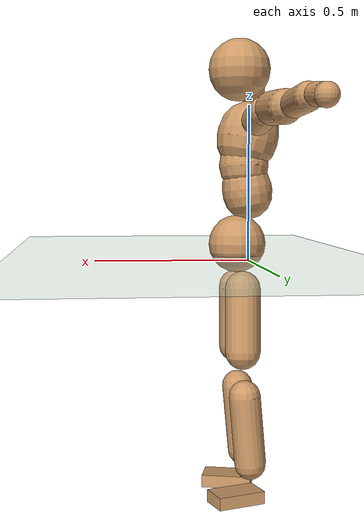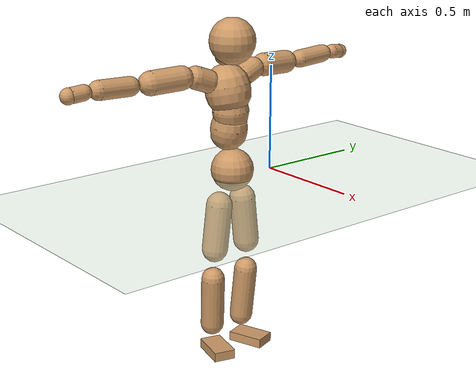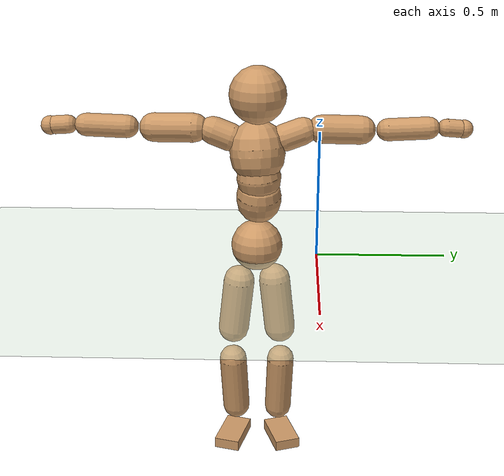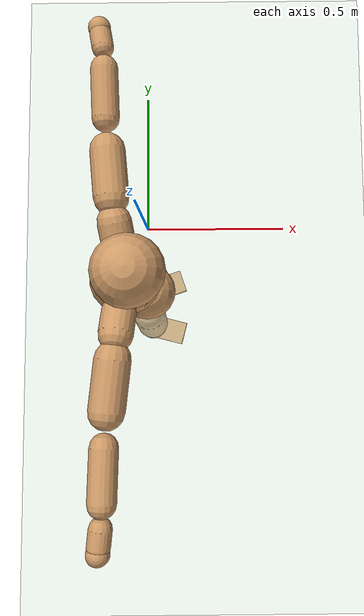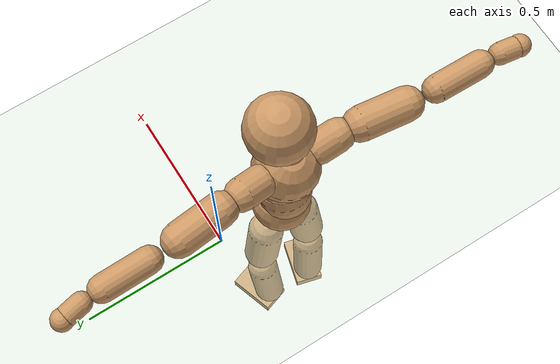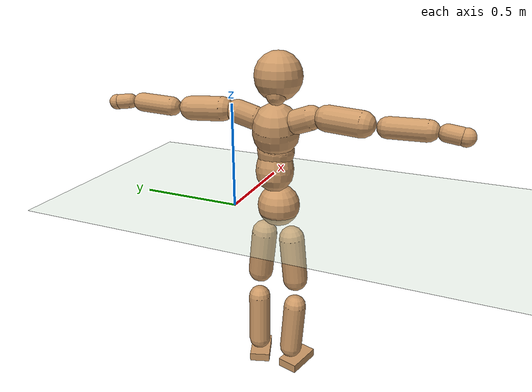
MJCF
<mujoco model="humanoid">
  <compiler coordinate="local"/>
  <default>
    <joint damping="0.0" armature="0.01" stiffness="0.0" limited="true"/>
    <geom conaffinity="1" condim="3" contype="7" margin="0.001" rgba="0.8 0.6 .4 1"/>
  </default>
  <asset>
    <texture type="skybox" builtin="gradient" rgb1=".4 .5 .6" rgb2="0 0 0" width="100" height="100"/>
    <texture builtin="flat" height="1278" mark="cross" markrgb="1 1 1" name="texgeom" random="0.01" rgb1="0.8 0.6 0.4" rgb2="0.8 0.6 0.4" type="cube" width="127"/>
    <texture builtin="checker" height="100" name="texplane" rgb1="0 0 0" rgb2="0.8 0.8 0.8" type="2d" width="100"/>
    <material name="MatPlane" reflectance="0.5" shininess="1" specular="1" texrepeat="60 60" texture="texplane"/>
    <material name="geom" texture="texgeom" texuniform="true"/>
  </asset>
  <worldbody>
    <light cutoff="100" diffuse="1 1 1" dir="-0 0 -1.3" directional="true" exponent="1" pos="0 0 1.3" specular=".1 .1 .1"/>
    <geom conaffinity="1" condim="3" name="floor" pos="0 0 0" rgba="0.8 0.9 0.8 1" size="100 100 .2" type="plane" material="MatPlane"/>
    <body name="Pelvis" pos="0.0008 -0.2346 0.0389">
      <freejoint name="Pelvis"/>
      <geom type="sphere" contype="1" conaffinity="1" density="500" size="0.1004" pos="0.0000 0.0000 0.0000" name="Pelvis"/>
      <body name="L_Hip" pos="-0.0109 0.0618 -0.0798">
        <joint name="L_Hip_x" type="hinge" pos="0 0 0" axis="1 0 0" stiffness="800" damping="80" armature="0.02" range="-180.0000 180.0000"/>
        <joint name="L_Hip_y" type="hinge" pos="0 0 0" axis="0 1 0" stiffness="800" damping="80" armature="0.02" range="-180.0000 180.0000"/>
        <joint name="L_Hip_z" type="hinge" pos="0 0 0" axis="0 0 1" stiffness="800" damping="80" armature="0.02" range="-180.0000 180.0000"/>
        <geom type="capsule" contype="1" conaffinity="1" density="500" fromto="0.0008 0.0078 -0.0729 0.0033 0.0311 -0.2917" size="0.0612" name="L_Hip"/>
        <body name="L_Knee" pos="0.0042 0.0388 -0.3646">
          <joint name="L_Knee_x" type="hinge" pos="0 0 0" axis="1 0 0" stiffness="800" damping="80" armature="0.02" range="-180.0000 180.0000"/>
          <joint name="L_Knee_y" type="hinge" pos="0 0 0" axis="0 1 0" stiffness="800" damping="80" armature="0.02" range="-180.0000 180.0000"/>
          <joint name="L_Knee_z" type="hinge" pos="0 0 0" axis="0 0 1" stiffness="800" damping="80" armature="0.02" range="-180.0000 180.0000"/>
          <geom type="capsule" contype="1" conaffinity="1" density="500" fromto="-0.0076 -0.0031 -0.0820 -0.0304 -0.0123 -0.3279" size="0.055" name="L_Knee"/>
          <body name="L_Ankle" pos="-0.038 -0.0153 -0.4099">
            <joint name="L_Ankle_x" type="hinge" pos="0 0 0" axis="1 0 0" stiffness="800" damping="80" armature="0.02" range="-180.0000 180.0000"/>
            <joint name="L_Ankle_y" type="hinge" pos="0 0 0" axis="0 1 0" stiffness="800" damping="80" armature="0.02" range="-180.0000 180.0000"/>
            <joint name="L_Ankle_z" type="hinge" pos="0 0 0" axis="0 0 1" stiffness="800" damping="80" armature="0.02" range="-180.0000 180.0000"/>
            <geom type="box" contype="1" conaffinity="1" density="500" pos="0.0600 0.0199 -0.0290" size="0.0868 0.0512 0.022" quat="0.9872 0.0000 0.0000 0.1597" name="L_Ankle"/>
            <body name="L_Toe" pos="0.12 0.0398 -0.058">
              <joint name="L_Toe_x" type="hinge" pos="0 0 0" axis="1 0 0" stiffness="500" damping="50" armature="0.02" range="-180.0000 180.0000"/>
              <joint name="L_Toe_y" type="hinge" pos="0 0 0" axis="0 1 0" stiffness="500" damping="50" armature="0.02" range="-180.0000 180.0000"/>
              <joint name="L_Toe_z" type="hinge" pos="0 0 0" axis="0 0 1" stiffness="500" damping="50" armature="0.02" range="-180.0000 180.0000"/>
              <geom type="box" contype="1" conaffinity="1" density="500" pos="0.0000 0.0000 0.0286" size="0.0011 0.0024 0.0011" quat="0.9864 0.0000 0.0000 0.1645" name="L_Toe"/>
            </body>
          </body>
        </body>
      </body>
      <body name="R_Hip" pos="-0.006 -0.0636 -0.0883">
        <joint name="R_Hip_x" type="hinge" pos="0 0 0" axis="1 0 0" stiffness="800" damping="80" armature="0.02" range="-180.0000 180.0000"/>
        <joint name="R_Hip_y" type="hinge" pos="0 0 0" axis="0 1 0" stiffness="800" damping="80" armature="0.02" range="-180.0000 180.0000"/>
        <joint name="R_Hip_z" type="hinge" pos="0 0 0" axis="0 0 1" stiffness="800" damping="80" armature="0.02" range="-180.0000 180.0000"/>
        <geom type="capsule" contype="1" conaffinity="1" density="500" fromto="-0.0014 -0.0080 -0.0727 -0.0054 -0.0321 -0.2907" size="0.061" name="R_Hip"/>
        <body name="R_Knee" pos="-0.0068 -0.0401 -0.3634">
          <joint name="R_Knee_x" type="hinge" pos="0 0 0" axis="1 0 0" stiffness="800" damping="80" armature="0.02" range="-180.0000 180.0000"/>
          <joint name="R_Knee_y" type="hinge" pos="0 0 0" axis="0 1 0" stiffness="800" damping="80" armature="0.02" range="-180.0000 180.0000"/>
          <joint name="R_Knee_z" type="hinge" pos="0 0 0" axis="0 0 1" stiffness="800" damping="80" armature="0.02" range="-180.0000 180.0000"/>
          <geom type="capsule" contype="1" conaffinity="1" density="500" fromto="-0.0070 0.0035 -0.0806 -0.0279 0.0141 -0.3225" size="0.0556" name="R_Knee"/>
          <body name="R_Ankle" pos="-0.0348 0.0177 -0.4031">
            <joint name="R_Ankle_x" type="hinge" pos="0 0 0" axis="1 0 0" stiffness="800" damping="80" armature="0.02" range="-180.0000 180.0000"/>
            <joint name="R_Ankle_y" type="hinge" pos="0 0 0" axis="0 1 0" stiffness="800" damping="80" armature="0.02" range="-180.0000 180.0000"/>
            <joint name="R_Ankle_z" type="hinge" pos="0 0 0" axis="0 0 1" stiffness="800" damping="80" armature="0.02" range="-180.0000 180.0000"/>
            <geom type="box" contype="1" conaffinity="1" density="500" pos="0.0634 -0.0166 -0.0306" size="0.089 0.0515 0.0223" quat="0.9918 0.0000 0.0000 -0.1276" name="R_Ankle"/>
            <body name="R_Toe" pos="0.1267 -0.0332 -0.0612">
              <joint name="R_Toe_x" type="hinge" pos="0 0 0" axis="1 0 0" stiffness="500" damping="50" armature="0.02" range="-180.0000 180.0000"/>
              <joint name="R_Toe_y" type="hinge" pos="0 0 0" axis="0 1 0" stiffness="500" damping="50" armature="0.02" range="-180.0000 180.0000"/>
              <joint name="R_Toe_z" type="hinge" pos="0 0 0" axis="0 0 1" stiffness="500" damping="50" armature="0.02" range="-180.0000 180.0000"/>
              <geom type="box" contype="1" conaffinity="1" density="500" pos="0.0000 0.0000 0.0308" size="0.0012 0.0026 0.0011" quat="0.9930 0.0000 0.0000 -0.1185" name="R_Toe"/>
            </body>
          </body>
        </body>
      </body>
      <body name="Torso" pos="-0.0451 0.0046 0.1225">
        <joint name="Torso_x" type="hinge" pos="0 0 0" axis="1 0 0" stiffness="1000" damping="100" armature="0.02" range="-180.0000 180.0000"/>
        <joint name="Torso_y" type="hinge" pos="0 0 0" axis="0 1 0" stiffness="1000" damping="100" armature="0.02" range="-180.0000 180.0000"/>
        <joint name="Torso_z" type="hinge" pos="0 0 0" axis="0 0 1" stiffness="1000" damping="100" armature="0.02" range="-180.0000 180.0000"/>
        <geom type="capsule" contype="1" conaffinity="1" density="500" fromto="0.0137 0.0024 0.0755 0.0091 0.0016 0.0503" size="0.087" name="Torso"/>
        <body name="Spine" pos="0.0228 0.0039 0.1258">
          <joint name="Spine_x" type="hinge" pos="0 0 0" axis="1 0 0" stiffness="1000" damping="100" armature="0.02" range="-180.0000 180.0000"/>
          <joint name="Spine_y" type="hinge" pos="0 0 0" axis="0 1 0" stiffness="1000" damping="100" armature="0.02" range="-180.0000 180.0000"/>
          <joint name="Spine_z" type="hinge" pos="0 0 0" axis="0 0 1" stiffness="1000" damping="100" armature="0.02" range="-180.0000 180.0000"/>
          <geom type="capsule" contype="1" conaffinity="1" density="500" fromto="0.0012 -0.0020 0.0308 0.0008 -0.0013 0.0205" size="0.0855" name="Spine"/>
          <body name="Chest" pos="0.002 -0.0033 0.0514">
            <joint name="Chest_x" type="hinge" pos="0 0 0" axis="1 0 0" stiffness="1000" damping="100" armature="0.02" range="-180.0000 180.0000"/>
            <joint name="Chest_y" type="hinge" pos="0 0 0" axis="0 1 0" stiffness="1000" damping="100" armature="0.02" range="-180.0000 180.0000"/>
            <joint name="Chest_z" type="hinge" pos="0 0 0" axis="0 0 1" stiffness="1000" damping="100" armature="0.02" range="-180.0000 180.0000"/>
            <geom type="capsule" contype="1" conaffinity="1" density="500" fromto="-0.0185 -0.0051 0.0885 -0.0123 -0.0034 0.0590" size="0.1063" name="Chest"/>
            <body name="Neck" pos="-0.0394 -0.0125 0.2136">
              <joint name="Neck_x" type="hinge" pos="0 0 0" axis="1 0 0" stiffness="500" damping="50" armature="0.02" range="-180.0000 180.0000"/>
              <joint name="Neck_y" type="hinge" pos="0 0 0" axis="0 1 0" stiffness="500" damping="50" armature="0.02" range="-180.0000 180.0000"/>
              <joint name="Neck_z" type="hinge" pos="0 0 0" axis="0 0 1" stiffness="500" damping="50" armature="0.02" range="-180.0000 180.0000"/>
              <geom type="capsule" contype="1" conaffinity="1" density="500" fromto="0.0109 0.0021 0.0176 0.0435 0.0084 0.0704" size="0.0467" name="Neck"/>
              <body name="Head" pos="0.0544 0.0105 0.088">
                <joint name="Head_x" type="hinge" pos="0 0 0" axis="1 0 0" stiffness="500" damping="50" armature="0.02" range="-180.0000 180.0000"/>
                <joint name="Head_y" type="hinge" pos="0 0 0" axis="0 1 0" stiffness="500" damping="50" armature="0.02" range="-180.0000 180.0000"/>
                <joint name="Head_z" type="hinge" pos="0 0 0" axis="0 0 1" stiffness="500" damping="50" armature="0.02" range="-180.0000 180.0000"/>
                <geom type="sphere" contype="1" conaffinity="1" density="500" size="0.1077" pos="0.0000 0.0000 0.0000" name="Head"/>
              </body>
            </body>
            <body name="L_Thorax" pos="-0.0254 0.0693 0.1143">
              <joint name="L_Thorax_x" type="hinge" pos="0 0 0" axis="1 0 0" stiffness="500" damping="50" armature="0.02" range="-180.0000 180.0000"/>
              <joint name="L_Thorax_y" type="hinge" pos="0 0 0" axis="0 1 0" stiffness="500" damping="50" armature="0.02" range="-180.0000 180.0000"/>
              <joint name="L_Thorax_z" type="hinge" pos="0 0 0" axis="0 0 1" stiffness="500" damping="50" armature="0.02" range="-180.0000 180.0000"/>
              <geom type="capsule" contype="1" conaffinity="1" density="500" fromto="-0.0044 0.0243 0.0081 -0.0174 0.0972 0.0322" size="0.053" name="L_Thorax"/>
              <body name="L_Shoulder" pos="-0.0218 0.1215 0.0403">
                <joint name="L_Shoulder_x" type="hinge" pos="0 0 0" axis="1 0 0" stiffness="500" damping="50" armature="0.02" range="-720.0000 720.0000"/>
                <joint name="L_Shoulder_y" type="hinge" pos="0 0 0" axis="0 1 0" stiffness="500" damping="50" armature="0.02" range="-720.0000 720.0000"/>
                <joint name="L_Shoulder_z" type="hinge" pos="0 0 0" axis="0 0 1" stiffness="500" damping="50" armature="0.02" range="-720.0000 720.0000"/>
                <geom type="capsule" contype="1" conaffinity="1" density="500" fromto="-0.0044 0.0495 -0.0022 -0.0176 0.1980 -0.0088" size="0.0549" name="L_Shoulder"/>
                <body name="L_Elbow" pos="-0.022 0.2475 -0.011">
                  <joint name="L_Elbow_x" type="hinge" pos="0 0 0" axis="1 0 0" stiffness="500" damping="50" armature="0.02" range="-720.0000 720.0000"/>
                  <joint name="L_Elbow_y" type="hinge" pos="0 0 0" axis="0 1 0" stiffness="500" damping="50" armature="0.02" range="-720.0000 720.0000"/>
                  <joint name="L_Elbow_z" type="hinge" pos="0 0 0" axis="0 0 1" stiffness="500" damping="50" armature="0.02" range="-720.0000 720.0000"/>
                  <geom type="capsule" contype="1" conaffinity="1" density="500" fromto="-0.0016 0.0515 0.0023 -0.0064 0.2062 0.0093" size="0.0429" name="L_Elbow"/>
                  <body name="L_Wrist" pos="-0.008 0.2577 0.0116">
                    <joint name="L_Wrist_x" type="hinge" pos="0 0 0" axis="1 0 0" stiffness="300" damping="30" armature="0.02" range="-180.0000 180.0000"/>
                    <joint name="L_Wrist_y" type="hinge" pos="0 0 0" axis="0 1 0" stiffness="300" damping="30" armature="0.02" range="-180.0000 180.0000"/>
                    <joint name="L_Wrist_z" type="hinge" pos="0 0 0" axis="0 0 1" stiffness="300" damping="30" armature="0.02" range="-180.0000 180.0000"/>
                    <geom type="capsule" contype="1" conaffinity="1" density="500" fromto="-0.0030 0.0171 -0.0021 -0.0121 0.0683 -0.0083" size="0.0339" name="L_Wrist"/>
                    <body name="L_Hand" pos="-0.0151 0.0853 -0.0103">
                      <joint name="L_Hand_x" type="hinge" pos="0 0 0" axis="1 0 0" stiffness="300" damping="30" armature="0.02" range="-180.0000 180.0000"/>
                      <joint name="L_Hand_y" type="hinge" pos="0 0 0" axis="0 1 0" stiffness="300" damping="30" armature="0.02" range="-180.0000 180.0000"/>
                      <joint name="L_Hand_z" type="hinge" pos="0 0 0" axis="0 0 1" stiffness="300" damping="30" armature="0.02" range="-180.0000 180.0000"/>
                      <geom type="sphere" contype="1" conaffinity="1" density="500" size="0.0351" pos="0.0000 0.0000 0.0000" name="L_Hand"/>
                    </body>
                  </body>
                </body>
              </body>
            </body>
            <body name="R_Thorax" pos="-0.0278 -0.0825 0.1147">
              <joint name="R_Thorax_x" type="hinge" pos="0 0 0" axis="1 0 0" stiffness="500" damping="50" armature="0.02" range="-180.0000 180.0000"/>
              <joint name="R_Thorax_y" type="hinge" pos="0 0 0" axis="0 1 0" stiffness="500" damping="50" armature="0.02" range="-180.0000 180.0000"/>
              <joint name="R_Thorax_z" type="hinge" pos="0 0 0" axis="0 0 1" stiffness="500" damping="50" armature="0.02" range="-180.0000 180.0000"/>
              <geom type="capsule" contype="1" conaffinity="1" density="500" fromto="-0.0021 -0.0226 0.0085 -0.0083 -0.0905 0.0338" size="0.0536" name="R_Thorax"/>
              <body name="R_Shoulder" pos="-0.0104 -0.1131 0.0423">
                <joint name="R_Shoulder_x" type="hinge" pos="0 0 0" axis="1 0 0" stiffness="500" damping="50" armature="0.02" range="-720.0000 720.0000"/>
                <joint name="R_Shoulder_y" type="hinge" pos="0 0 0" axis="0 1 0" stiffness="500" damping="50" armature="0.02" range="-720.0000 720.0000"/>
                <joint name="R_Shoulder_z" type="hinge" pos="0 0 0" axis="0 0 1" stiffness="500" damping="50" armature="0.02" range="-720.0000 720.0000"/>
                <geom type="capsule" contype="1" conaffinity="1" density="500" fromto="-0.0059 -0.0512 -0.0017 -0.0236 -0.2050 -0.0068" size="0.0561" name="R_Shoulder"/>
                <body name="R_Elbow" pos="-0.0295 -0.2562 -0.0085">
                  <joint name="R_Elbow_x" type="hinge" pos="0 0 0" axis="1 0 0" stiffness="500" damping="50" armature="0.02" range="-720.0000 720.0000"/>
                  <joint name="R_Elbow_y" type="hinge" pos="0 0 0" axis="0 1 0" stiffness="500" damping="50" armature="0.02" range="-720.0000 720.0000"/>
                  <joint name="R_Elbow_z" type="hinge" pos="0 0 0" axis="0 0 1" stiffness="500" damping="50" armature="0.02" range="-720.0000 720.0000"/>
                  <geom type="capsule" contype="1" conaffinity="1" density="500" fromto="-0.0014 -0.0526 0.0016 -0.0056 -0.2106 0.0062" size="0.0443" name="R_Elbow"/>
                  <body name="R_Wrist" pos="-0.007 -0.2632 0.0078">
                    <joint name="R_Wrist_x" type="hinge" pos="0 0 0" axis="1 0 0" stiffness="300" damping="30" armature="0.02" range="-180.0000 180.0000"/>
                    <joint name="R_Wrist_y" type="hinge" pos="0 0 0" axis="0 1 0" stiffness="300" damping="30" armature="0.02" range="-180.0000 180.0000"/>
                    <joint name="R_Wrist_z" type="hinge" pos="0 0 0" axis="0 0 1" stiffness="300" damping="30" armature="0.02" range="-180.0000 180.0000"/>
                    <geom type="capsule" contype="1" conaffinity="1" density="500" fromto="-0.0020 -0.0179 -0.0018 -0.0079 -0.0715 -0.0070" size="0.0356" name="R_Wrist"/>
                    <body name="R_Hand" pos="-0.0099 -0.0894 -0.0088">
                      <joint name="R_Hand_x" type="hinge" pos="0 0 0" axis="1 0 0" stiffness="300" damping="30" armature="0.02" range="-180.0000 180.0000"/>
                      <joint name="R_Hand_y" type="hinge" pos="0 0 0" axis="0 1 0" stiffness="300" damping="30" armature="0.02" range="-180.0000 180.0000"/>
                      <joint name="R_Hand_z" type="hinge" pos="0 0 0" axis="0 0 1" stiffness="300" damping="30" armature="0.02" range="-180.0000 180.0000"/>
                      <geom type="sphere" contype="1" conaffinity="1" density="500" size="0.0365" pos="0.0000 0.0000 0.0000" name="R_Hand"/>
                    </body>
                  </body>
                </body>
              </body>
            </body>
          </body>
        </body>
      </body>
    </body>
  </worldbody>
  <actuator>
    <motor name="L_Hip_x" joint="L_Hip_x" gear="500"/>
    <motor name="L_Hip_y" joint="L_Hip_y" gear="500"/>
    <motor name="L_Hip_z" joint="L_Hip_z" gear="500"/>
    <motor name="L_Knee_x" joint="L_Knee_x" gear="500"/>
    <motor name="L_Knee_y" joint="L_Knee_y" gear="500"/>
    <motor name="L_Knee_z" joint="L_Knee_z" gear="500"/>
    <motor name="L_Ankle_x" joint="L_Ankle_x" gear="500"/>
    <motor name="L_Ankle_y" joint="L_Ankle_y" gear="500"/>
    <motor name="L_Ankle_z" joint="L_Ankle_z" gear="500"/>
    <motor name="L_Toe_x" joint="L_Toe_x" gear="500"/>
    <motor name="L_Toe_y" joint="L_Toe_y" gear="500"/>
    <motor name="L_Toe_z" joint="L_Toe_z" gear="500"/>
    <motor name="R_Hip_x" joint="R_Hip_x" gear="500"/>
    <motor name="R_Hip_y" joint="R_Hip_y" gear="500"/>
    <motor name="R_Hip_z" joint="R_Hip_z" gear="500"/>
    <motor name="R_Knee_x" joint="R_Knee_x" gear="500"/>
    <motor name="R_Knee_y" joint="R_Knee_y" gear="500"/>
    <motor name="R_Knee_z" joint="R_Knee_z" gear="500"/>
    <motor name="R_Ankle_x" joint="R_Ankle_x" gear="500"/>
    <motor name="R_Ankle_y" joint="R_Ankle_y" gear="500"/>
    <motor name="R_Ankle_z" joint="R_Ankle_z" gear="500"/>
    <motor name="R_Toe_x" joint="R_Toe_x" gear="500"/>
    <motor name="R_Toe_y" joint="R_Toe_y" gear="500"/>
    <motor name="R_Toe_z" joint="R_Toe_z" gear="500"/>
    <motor name="Torso_x" joint="Torso_x" gear="500"/>
    <motor name="Torso_y" joint="Torso_y" gear="500"/>
    <motor name="Torso_z" joint="Torso_z" gear="500"/>
    <motor name="Spine_x" joint="Spine_x" gear="500"/>
    <motor name="Spine_y" joint="Spine_y" gear="500"/>
    <motor name="Spine_z" joint="Spine_z" gear="500"/>
    <motor name="Chest_x" joint="Chest_x" gear="500"/>
    <motor name="Chest_y" joint="Chest_y" gear="500"/>
    <motor name="Chest_z" joint="Chest_z" gear="500"/>
    <motor name="Neck_x" joint="Neck_x" gear="500"/>
    <motor name="Neck_y" joint="Neck_y" gear="500"/>
    <motor name="Neck_z" joint="Neck_z" gear="500"/>
    <motor name="Head_x" joint="Head_x" gear="500"/>
    <motor name="Head_y" joint="Head_y" gear="500"/>
    <motor name="Head_z" joint="Head_z" gear="500"/>
    <motor name="L_Thorax_x" joint="L_Thorax_x" gear="500"/>
    <motor name="L_Thorax_y" joint="L_Thorax_y" gear="500"/>
    <motor name="L_Thorax_z" joint="L_Thorax_z" gear="500"/>
    <motor name="L_Shoulder_x" joint="L_Shoulder_x" gear="500"/>
    <motor name="L_Shoulder_y" joint="L_Shoulder_y" gear="500"/>
    <motor name="L_Shoulder_z" joint="L_Shoulder_z" gear="500"/>
    <motor name="L_Elbow_x" joint="L_Elbow_x" gear="500"/>
    <motor name="L_Elbow_y" joint="L_Elbow_y" gear="500"/>
    <motor name="L_Elbow_z" joint="L_Elbow_z" gear="500"/>
    <motor name="L_Wrist_x" joint="L_Wrist_x" gear="500"/>
    <motor name="L_Wrist_y" joint="L_Wrist_y" gear="500"/>
    <motor name="L_Wrist_z" joint="L_Wrist_z" gear="500"/>
    <motor name="L_Hand_x" joint="L_Hand_x" gear="500"/>
    <motor name="L_Hand_y" joint="L_Hand_y" gear="500"/>
    <motor name="L_Hand_z" joint="L_Hand_z" gear="500"/>
    <motor name="R_Thorax_x" joint="R_Thorax_x" gear="500"/>
    <motor name="R_Thorax_y" joint="R_Thorax_y" gear="500"/>
    <motor name="R_Thorax_z" joint="R_Thorax_z" gear="500"/>
    <motor name="R_Shoulder_x" joint="R_Shoulder_x" gear="500"/>
    <motor name="R_Shoulder_y" joint="R_Shoulder_y" gear="500"/>
    <motor name="R_Shoulder_z" joint="R_Shoulder_z" gear="500"/>
    <motor name="R_Elbow_x" joint="R_Elbow_x" gear="500"/>
    <motor name="R_Elbow_y" joint="R_Elbow_y" gear="500"/>
    <motor name="R_Elbow_z" joint="R_Elbow_z" gear="500"/>
    <motor name="R_Wrist_x" joint="R_Wrist_x" gear="500"/>
    <motor name="R_Wrist_y" joint="R_Wrist_y" gear="500"/>
    <motor name="R_Wrist_z" joint="R_Wrist_z" gear="500"/>
    <motor name="R_Hand_x" joint="R_Hand_x" gear="500"/>
    <motor name="R_Hand_y" joint="R_Hand_y" gear="500"/>
    <motor name="R_Hand_z" joint="R_Hand_z" gear="500"/>
  </actuator>
  <contact>
    <exclude body1="Torso" body2="Chest"/>
    <exclude body1="Head" body2="Chest"/>
    <exclude body1="R_Knee" body2="R_Toe"/>
    <exclude body1="R_Knee" body2="L_Ankle"/>
    <exclude body1="R_Knee" body2="L_Toe"/>
    <exclude body1="L_Knee" body2="L_Toe"/>
    <exclude body1="L_Knee" body2="R_Ankle"/>
    <exclude body1="L_Knee" body2="R_Toe"/>
    <exclude body1="L_Shoulder" body2="Chest"/>
    <exclude body1="R_Shoulder" body2="Chest"/>
  </contact>
  <sensor/>
  <size njmax="700" nconmax="700"/>
</mujoco>
